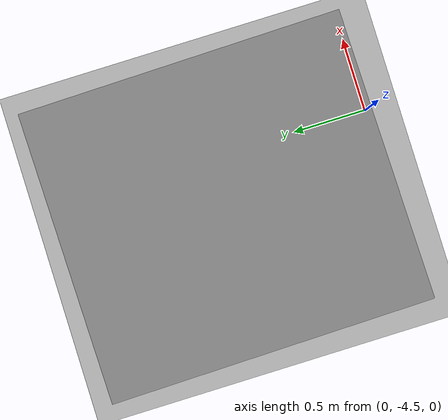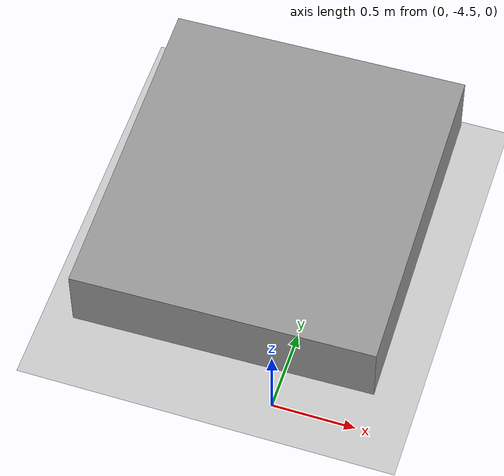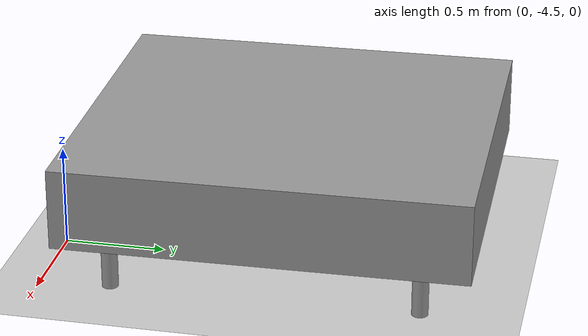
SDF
<sdf version="1.6">
 <world name="default">
  <model name="ground_plane">
   <static>1</static>
   <link name="link">
    <collision name="collision">
     <geometry><plane><normal>0 0 1</normal><size>100 100</size></plane></geometry>
     <surface><friction><ode><mu>100</mu><mu2>50</mu2></ode></friction></surface>
    </collision>
    <visual name="visual">
     <cast_shadows>0</cast_shadows>
     <geometry><plane><normal>0 0 1</normal><size>100 100</size></plane></geometry>
     <material>
      <script><uri>file://media/materials/scripts/gazebo.material</uri><name>Gazebo/Grey</name></script>
     </material>
    </visual>
   </link>
  </model>
  <model name="bed">
   <link name="link_0">
    <pose>-0.020885 0.186214 -0.326795 0 -0 0</pose>
    <inertial>
     <mass>1</mass>
     <inertia>
      <ixx>0.166667</ixx>
      <ixy>0</ixy>
      <ixz>0</ixz>
      <iyy>0.166667</iyy>
      <iyz>0</iyz>
      <izz>0.166667</izz>
     </inertia>
    </inertial>
    <visual name="visual">
     <geometry><box><size>2 1.8 0.4</size></box></geometry>
     <material>
      <lighting>1</lighting>
      <script><uri>file://media/materials/scripts/gazebo.material</uri><name>Gazebo/Grey</name></script>
      <ambient>0.3 0.3 0.3 1</ambient>
      <diffuse>0.7 0.7 0.7 1</diffuse>
      <specular>0.01 0.01 0.01 1</specular>
      <emissive>0 0 0 1</emissive>
      <shader type="vertex"><normal_map>__default__</normal_map></shader>
     </material>
    </visual>
    <collision name="collision">
     <geometry><box><size>2 1.8 0.4</size></box></geometry>
     <surface>
      <friction>
       <ode><mu>1</mu><mu2>1</mu2><fdir1>0 0 0</fdir1><slip1>0</slip1><slip2>0</slip2></ode>
       <torsional>
        <coefficient>1</coefficient>
        <patch_radius>0</patch_radius>
        <surface_radius>0</surface_radius>
        <use_patch_radius>1</use_patch_radius>
        <ode><slip>0</slip></ode>
       </torsional>
      </friction>
      <bounce><restitution_coefficient>0</restitution_coefficient><threshold>1e+06</threshold></bounce>
      <contact>
       <collide_without_contact>0</collide_without_contact>
       <collide_without_contact_bitmask>1</collide_without_contact_bitmask>
       <collide_bitmask>1</collide_bitmask>
       <ode>
        <soft_cfm>0</soft_cfm>
        <soft_erp>0.2</soft_erp>
        <kp>1e+13</kp>
        <kd>1</kd>
        <max_vel>0.01</max_vel>
        <min_depth>0</min_depth>
       </ode>
       <bullet>
        <split_impulse>1</split_impulse>
        <split_impulse_penetration_threshold>-0.01</split_impulse_penetration_threshold>
        <soft_cfm>0</soft_cfm>
        <soft_erp>0.2</soft_erp>
        <kp>1e+13</kp>
        <kd>1</kd>
       </bullet>
      </contact>
     </surface>
    </collision>
   </link>
   <link name="link_1">
    <pose>-0.770885 -0.563786 -0.001795 0 -0 0</pose>
    <inertial>
     <mass>1</mass>
     <inertia><ixx>0.145833</ixx><ixy>0</ixy><ixz>0</ixz><iyy>0.145833</iyy><iyz>0</iyz><izz>0.125</izz></inertia>
    </inertial>
    <visual name="visual">
     <geometry><cylinder><radius>0.04</radius><length>0.25</length></cylinder></geometry>
     <material>
      <lighting>1</lighting>
      <script><uri>file://media/materials/scripts/gazebo.material</uri><name>Gazebo/Grey</name></script>
      <ambient>0.3 0.3 0.3 1</ambient>
      <diffuse>0.7 0.7 0.7 1</diffuse>
      <specular>0.01 0.01 0.01 1</specular>
      <emissive>0 0 0 1</emissive>
      <shader type="vertex"><normal_map>__default__</normal_map></shader>
     </material>
    </visual>
    <collision name="collision">
     <geometry><cylinder><radius>0.04</radius><length>0.25</length></cylinder></geometry>
     <surface>
      <friction>
       <ode><mu>1</mu><mu2>1</mu2><fdir1>0 0 0</fdir1><slip1>0</slip1><slip2>0</slip2></ode>
       <torsional>
        <coefficient>1</coefficient>
        <patch_radius>0</patch_radius>
        <surface_radius>0</surface_radius>
        <use_patch_radius>1</use_patch_radius>
        <ode><slip>0</slip></ode>
       </torsional>
      </friction>
      <bounce><restitution_coefficient>0</restitution_coefficient><threshold>1e+06</threshold></bounce>
      <contact>
       <collide_without_contact>0</collide_without_contact>
       <collide_without_contact_bitmask>1</collide_without_contact_bitmask>
       <collide_bitmask>1</collide_bitmask>
       <ode>
        <soft_cfm>0</soft_cfm>
        <soft_erp>0.2</soft_erp>
        <kp>1e+13</kp>
        <kd>1</kd>
        <max_vel>0.01</max_vel>
        <min_depth>0</min_depth>
       </ode>
       <bullet>
        <split_impulse>1</split_impulse>
        <split_impulse_penetration_threshold>-0.01</split_impulse_penetration_threshold>
        <soft_cfm>0</soft_cfm>
        <soft_erp>0.2</soft_erp>
        <kp>1e+13</kp>
        <kd>1</kd>
       </bullet>
      </contact>
     </surface>
    </collision>
   </link>
   <link name="link_1_clone">
    <pose>-0.770885 0.936214 -0.001795 0 -0 0</pose>
    <inertial>
     <mass>1</mass>
     <inertia><ixx>0.145833</ixx><ixy>0</ixy><ixz>0</ixz><iyy>0.145833</iyy><iyz>0</iyz><izz>0.125</izz></inertia>
    </inertial>
    <visual name="visual">
     <geometry><cylinder><radius>0.04</radius><length>0.25</length></cylinder></geometry>
     <material>
      <lighting>1</lighting>
      <script><uri>file://media/materials/scripts/gazebo.material</uri><name>Gazebo/Grey</name></script>
      <ambient>0.3 0.3 0.3 1</ambient>
      <diffuse>0.7 0.7 0.7 1</diffuse>
      <specular>0.01 0.01 0.01 1</specular>
      <emissive>0 0 0 1</emissive>
      <shader type="vertex"><normal_map>__default__</normal_map></shader>
     </material>
    </visual>
    <collision name="collision">
     <geometry><cylinder><radius>0.04</radius><length>0.25</length></cylinder></geometry>
     <surface>
      <friction>
       <ode><mu>1</mu><mu2>1</mu2><fdir1>0 0 0</fdir1><slip1>0</slip1><slip2>0</slip2></ode>
       <torsional>
        <coefficient>1</coefficient>
        <patch_radius>0</patch_radius>
        <surface_radius>0</surface_radius>
        <use_patch_radius>1</use_patch_radius>
        <ode><slip>0</slip></ode>
       </torsional>
      </friction>
      <bounce><restitution_coefficient>0</restitution_coefficient><threshold>1e+06</threshold></bounce>
      <contact>
       <collide_without_contact>0</collide_without_contact>
       <collide_without_contact_bitmask>1</collide_without_contact_bitmask>
       <collide_bitmask>1</collide_bitmask>
       <ode>
        <soft_cfm>0</soft_cfm>
        <soft_erp>0.2</soft_erp>
        <kp>1e+13</kp>
        <kd>1</kd>
        <max_vel>0.01</max_vel>
        <min_depth>0</min_depth>
       </ode>
       <bullet>
        <split_impulse>1</split_impulse>
        <split_impulse_penetration_threshold>-0.01</split_impulse_penetration_threshold>
        <soft_cfm>0</soft_cfm>
        <soft_erp>0.2</soft_erp>
        <kp>1e+13</kp>
        <kd>1</kd>
       </bullet>
      </contact>
     </surface>
    </collision>
   </link>
   <link name="link_1_clone_0">
    <pose>0.729115 -0.563786 -0.001795 0 -0 0</pose>
    <inertial>
     <mass>1</mass>
     <inertia><ixx>0.145833</ixx><ixy>0</ixy><ixz>0</ixz><iyy>0.145833</iyy><iyz>0</iyz><izz>0.125</izz></inertia>
    </inertial>
    <visual name="visual">
     <geometry><cylinder><radius>0.04</radius><length>0.25</length></cylinder></geometry>
     <material>
      <lighting>1</lighting>
      <script><uri>file://media/materials/scripts/gazebo.material</uri><name>Gazebo/Grey</name></script>
      <ambient>0.3 0.3 0.3 1</ambient>
      <diffuse>0.7 0.7 0.7 1</diffuse>
      <specular>0.01 0.01 0.01 1</specular>
      <emissive>0 0 0 1</emissive>
      <shader type="vertex"><normal_map>__default__</normal_map></shader>
     </material>
    </visual>
    <collision name="collision">
     <geometry><cylinder><radius>0.04</radius><length>0.25</length></cylinder></geometry>
     <surface>
      <friction>
       <ode><mu>1</mu><mu2>1</mu2><fdir1>0 0 0</fdir1><slip1>0</slip1><slip2>0</slip2></ode>
       <torsional>
        <coefficient>1</coefficient>
        <patch_radius>0</patch_radius>
        <surface_radius>0</surface_radius>
        <use_patch_radius>1</use_patch_radius>
        <ode><slip>0</slip></ode>
       </torsional>
      </friction>
      <bounce><restitution_coefficient>0</restitution_coefficient><threshold>1e+06</threshold></bounce>
      <contact>
       <collide_without_contact>0</collide_without_contact>
       <collide_without_contact_bitmask>1</collide_without_contact_bitmask>
       <collide_bitmask>1</collide_bitmask>
       <ode>
        <soft_cfm>0</soft_cfm>
        <soft_erp>0.2</soft_erp>
        <kp>1e+13</kp>
        <kd>1</kd>
        <max_vel>0.01</max_vel>
        <min_depth>0</min_depth>
       </ode>
       <bullet>
        <split_impulse>1</split_impulse>
        <split_impulse_penetration_threshold>-0.01</split_impulse_penetration_threshold>
        <soft_cfm>0</soft_cfm>
        <soft_erp>0.2</soft_erp>
        <kp>1e+13</kp>
        <kd>1</kd>
       </bullet>
      </contact>
     </surface>
    </collision>
   </link>
   <link name="link_1_clone_1">
    <pose>0.729115 0.936214 -0.001795 0 -0 0</pose>
    <inertial>
     <mass>1</mass>
     <inertia><ixx>0.145833</ixx><ixy>0</ixy><ixz>0</ixz><iyy>0.145833</iyy><iyz>0</iyz><izz>0.125</izz></inertia>
    </inertial>
    <visual name="visual">
     <geometry><cylinder><radius>0.04</radius><length>0.25</length></cylinder></geometry>
     <material>
      <lighting>1</lighting>
      <script><uri>file://media/materials/scripts/gazebo.material</uri><name>Gazebo/Grey</name></script>
      <ambient>0.3 0.3 0.3 1</ambient>
      <diffuse>0.7 0.7 0.7 1</diffuse>
      <specular>0.01 0.01 0.01 1</specular>
      <emissive>0 0 0 1</emissive>
      <shader type="vertex"><normal_map>__default__</normal_map></shader>
     </material>
    </visual>
    <collision name="collision">
     <geometry><cylinder><radius>0.04</radius><length>0.25</length></cylinder></geometry>
     <surface>
      <friction>
       <ode><mu>1</mu><mu2>1</mu2><fdir1>0 0 0</fdir1><slip1>0</slip1><slip2>0</slip2></ode>
       <torsional>
        <coefficient>1</coefficient>
        <patch_radius>0</patch_radius>
        <surface_radius>0</surface_radius>
        <use_patch_radius>1</use_patch_radius>
        <ode><slip>0</slip></ode>
       </torsional>
      </friction>
      <bounce><restitution_coefficient>0</restitution_coefficient><threshold>1e+06</threshold></bounce>
      <contact>
       <collide_without_contact>0</collide_without_contact>
       <collide_without_contact_bitmask>1</collide_without_contact_bitmask>
       <collide_bitmask>1</collide_bitmask>
       <ode>
        <soft_cfm>0</soft_cfm>
        <soft_erp>0.2</soft_erp>
        <kp>1e+13</kp>
        <kd>1</kd>
        <max_vel>0.01</max_vel>
        <min_depth>0</min_depth>
       </ode>
       <bullet>
        <split_impulse>1</split_impulse>
        <split_impulse_penetration_threshold>-0.01</split_impulse_penetration_threshold>
        <soft_cfm>0</soft_cfm>
        <soft_erp>0.2</soft_erp>
        <kp>1e+13</kp>
        <kd>1</kd>
       </bullet>
      </contact>
     </surface>
    </collision>
   </link>
   <joint name="link_0_JOINT_0" type="fixed">
    <parent>link_0</parent>
    <child>link_1</child>
    <physics>
     <ode><limit><cfm>0</cfm><erp>0.2</erp></limit><suspension><cfm>0</cfm><erp>0.2</erp></suspension></ode>
    </physics>
   </joint>
   <joint name="link_0_JOINT_1" type="revolute">
    <parent>link_0</parent>
    <child>link_1_clone</child>
    <axis>
     <xyz>1 0 0</xyz>
     <use_parent_model_frame>0</use_parent_model_frame>
     <limit>
      <lower>-1.79769e+308</lower>
      <upper>1.79769e+308</upper>
      <effort>-1</effort>
      <velocity>-1</velocity>
     </limit>
     <dynamics>
      <spring_reference>0</spring_reference>
      <spring_stiffness>0</spring_stiffness>
      <damping>0</damping>
     </dynamics>
    </axis>
    <physics>
     <ode><limit><cfm>0</cfm><erp>0.2</erp></limit><suspension><cfm>0</cfm><erp>0.2</erp></suspension></ode>
    </physics>
   </joint>
   <joint name="link_0_JOINT_2" type="fixed">
    <parent>link_0</parent>
    <child>link_1_clone_0</child>
    <physics>
     <ode><limit><cfm>0</cfm><erp>0.2</erp></limit><suspension><cfm>0</cfm><erp>0.2</erp></suspension></ode>
    </physics>
   </joint>
   <joint name="link_0_JOINT_3" type="fixed">
    <parent>link_0</parent>
    <child>link_1_clone_1</child>
    <physics>
     <ode><limit><cfm>0</cfm><erp>0.2</erp></limit><suspension><cfm>0</cfm><erp>0.2</erp></suspension></ode>
    </physics>
   </joint>
   <static>0</static>
   <pose>-0.531315 -3.39838 0.123204 3.14159 1e-06 1.58746</pose>
  </model>
 </world>
</sdf>
